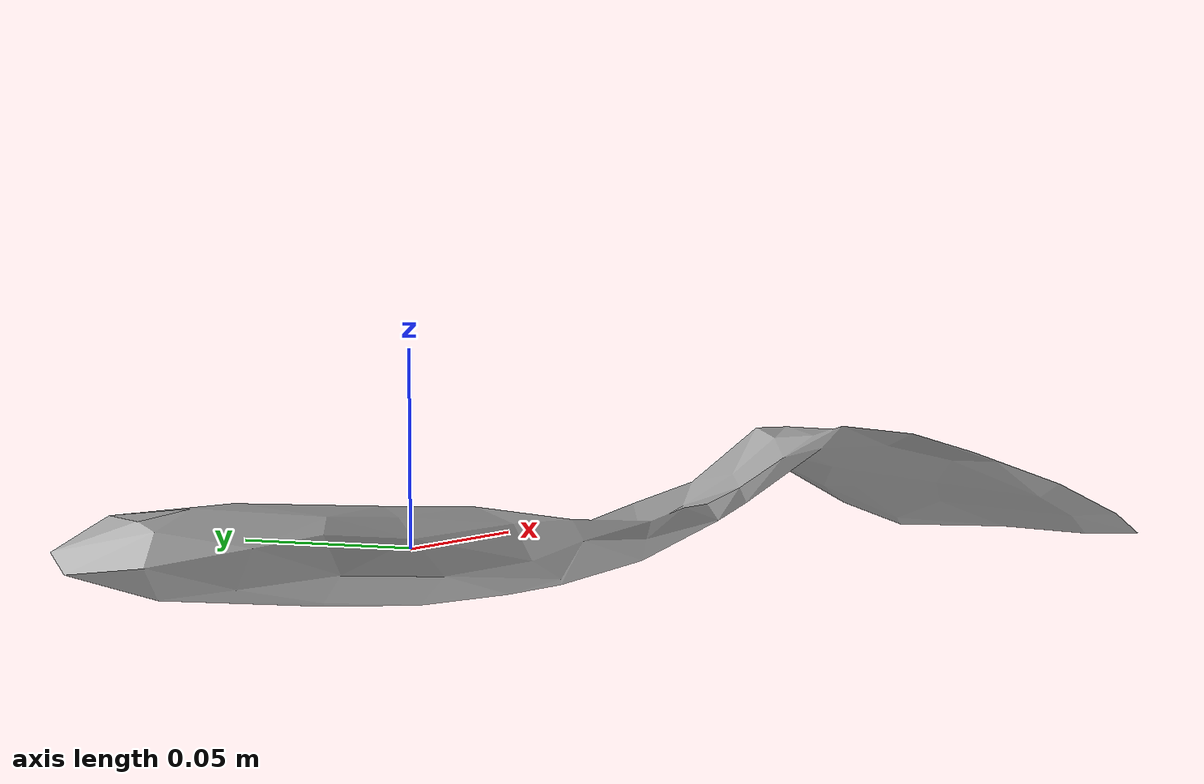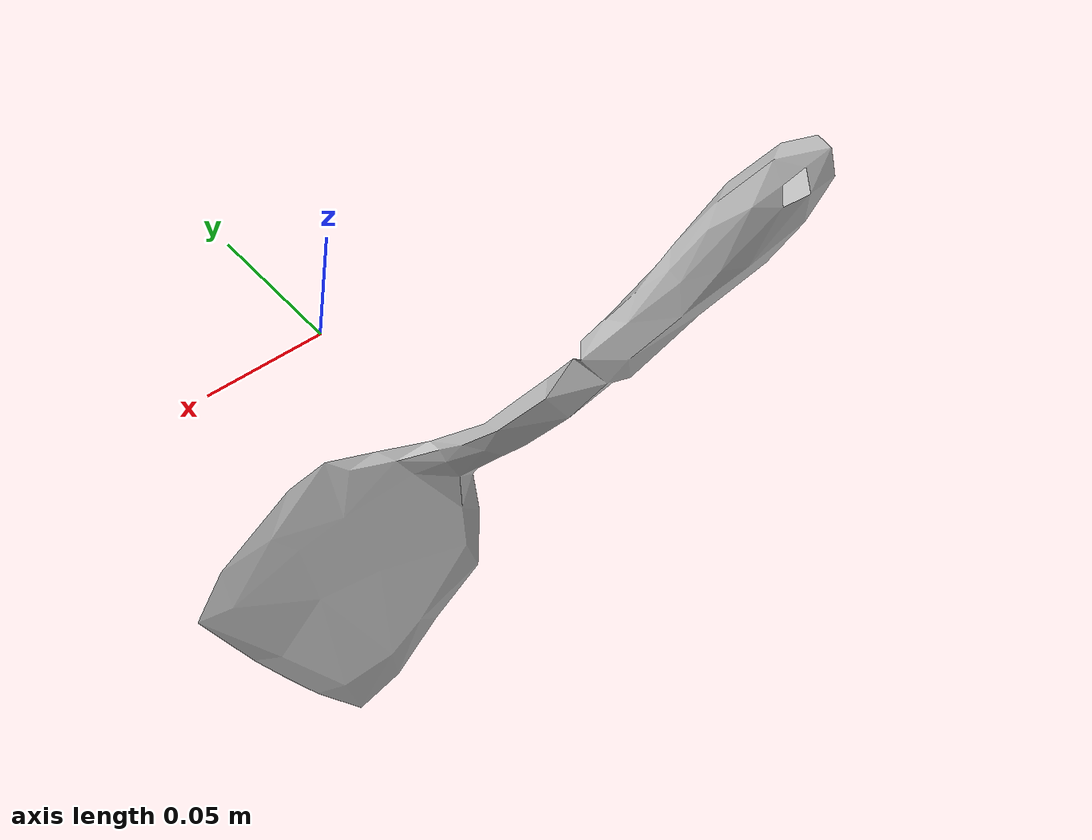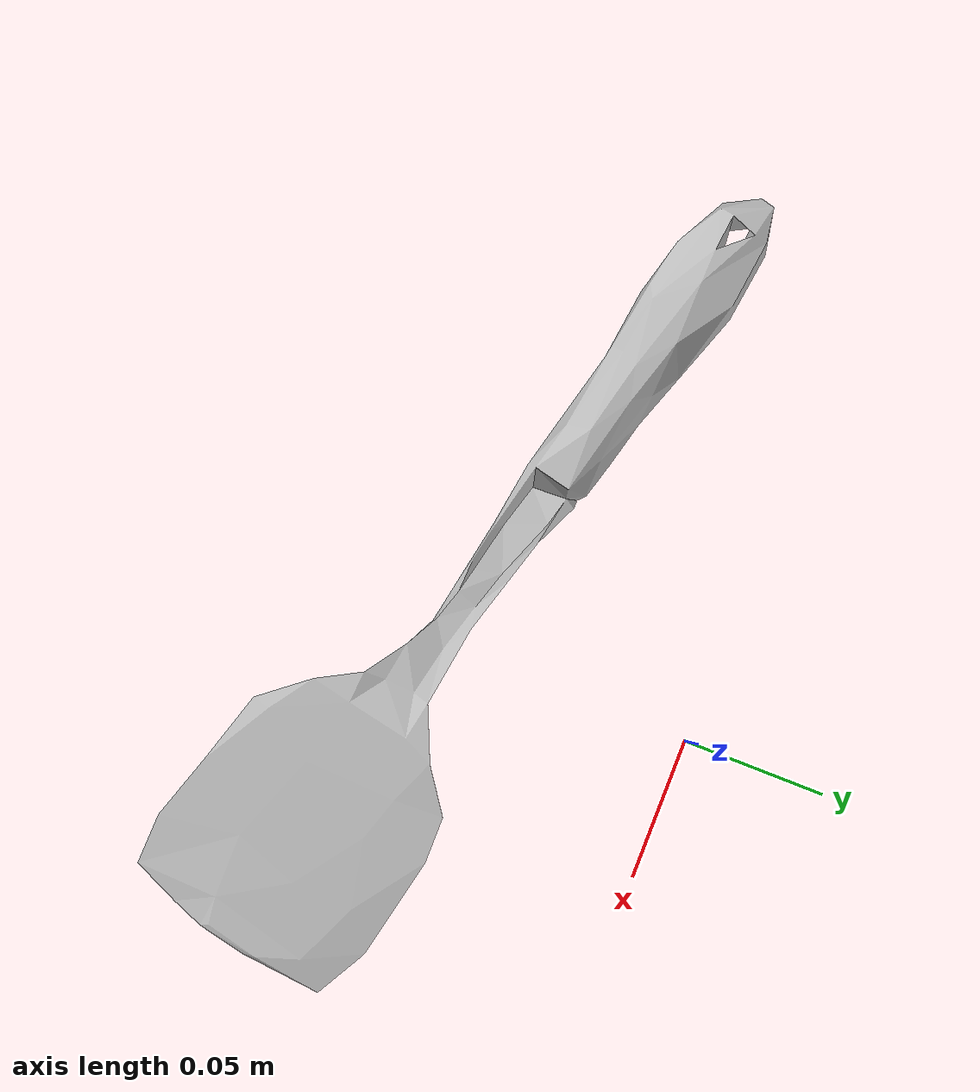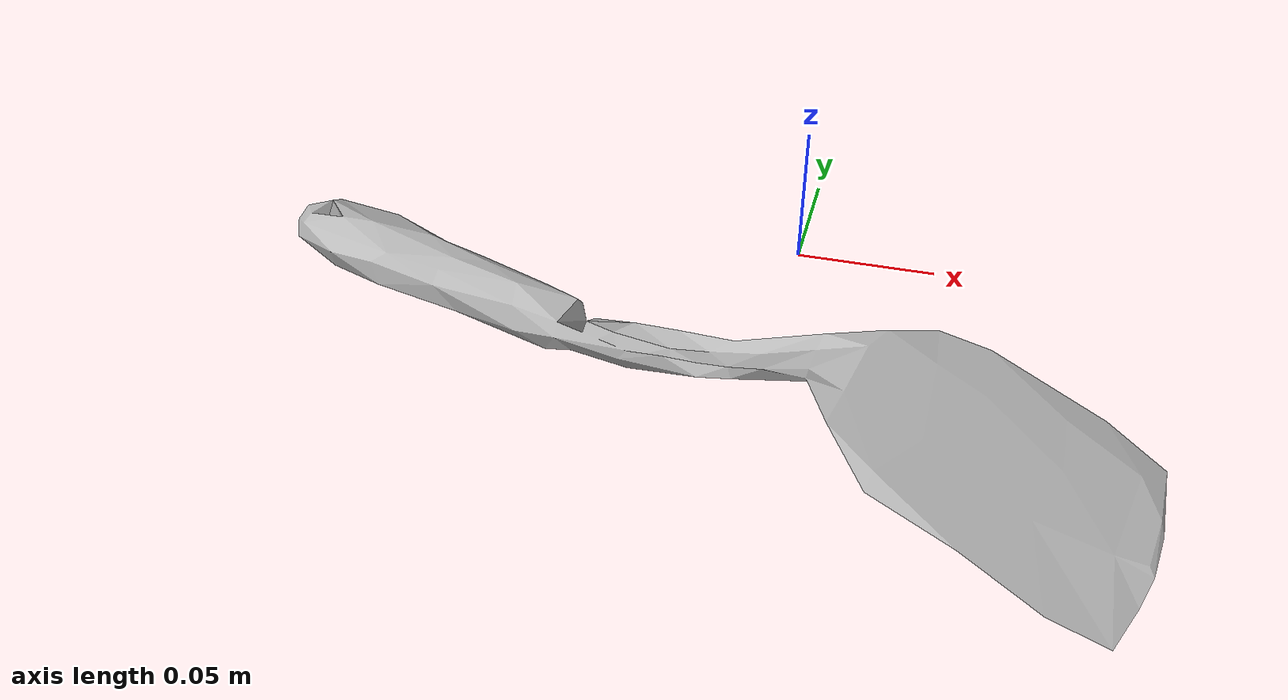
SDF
<?xml version='1.0'?>
<sdf version="1.4">
  <model name="033_spatula">
    <static>false</static>
    <link name="link">
      <inertial>
        <pose>-0.008352602890534829 -0.08832170851450706 0.013440513088427301 -0.07449395781809266 -1.5451096399353763 -0.18642886911703527</pose>
        <mass>0.03505022777143209</mass>
        <inertia>
          <ixx>0.0001798275466446638</ixx>
          <ixy>7.390060206403037e-21</ixy>
          <ixz>1.6355219713347561e-21</ixz>
          <iyy>0.0001714687119448401</iyy>
          <iyz>3.9907688139670406e-20</iyz>
          <izz>1.2324693357613316e-05</izz>
        </inertia>
      </inertial>
      <collision name="collision">
        <geometry>
          <mesh>
            <!-- Use a downsampled mesh for collisions -->
            <uri>model:///033_spatula/033_spatula_250_collision.stl</uri>
	        </mesh>
        </geometry>
        <surface>
      </surface>
      </collision>
      <visual name="visual">
        <geometry>
          <mesh>
            <uri>model:///033_spatula/textured.obj</uri>
	        </mesh>
        </geometry>
        <material>
          <script>
            <uri>model:///033_spatula/033_spatula.material</uri>
            <name>033_spatula</name>
          </script>
        </material>
      </visual>
    </link>
  </model>
</sdf>
